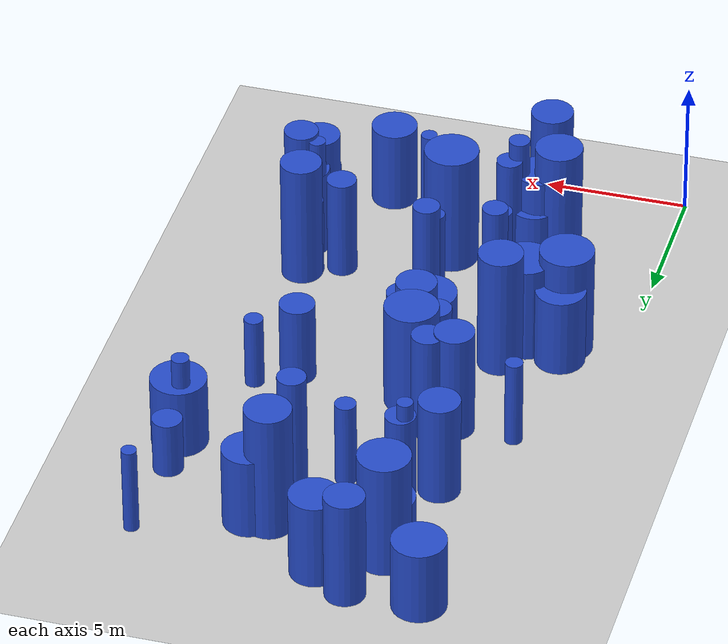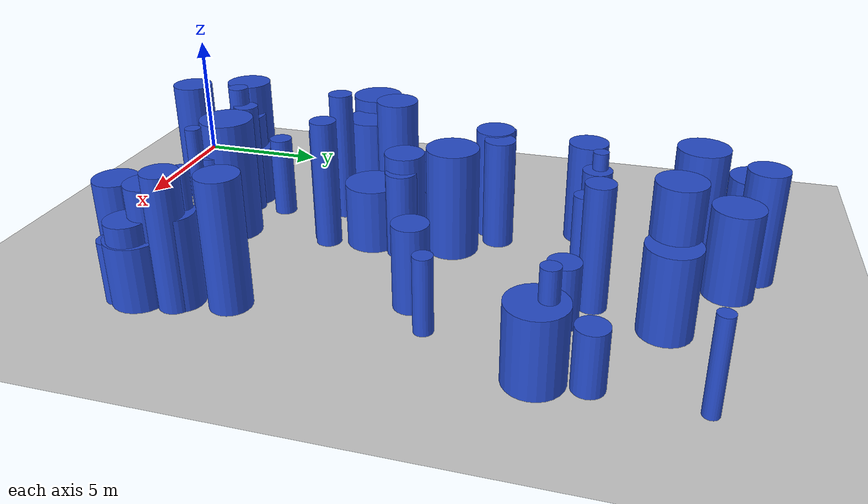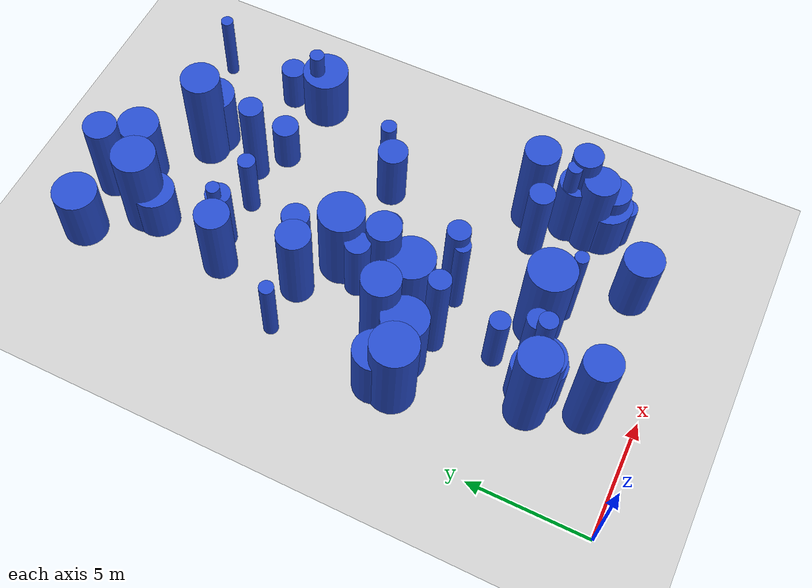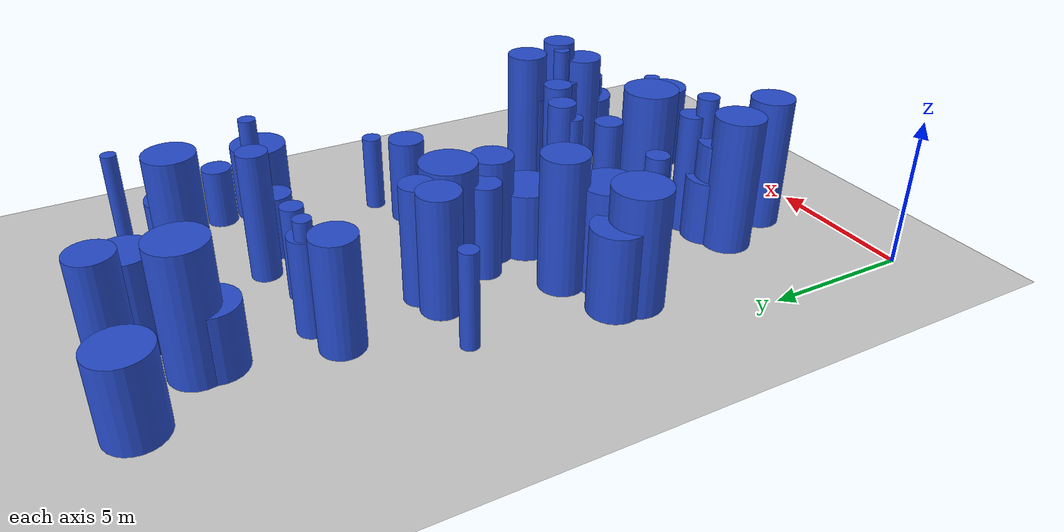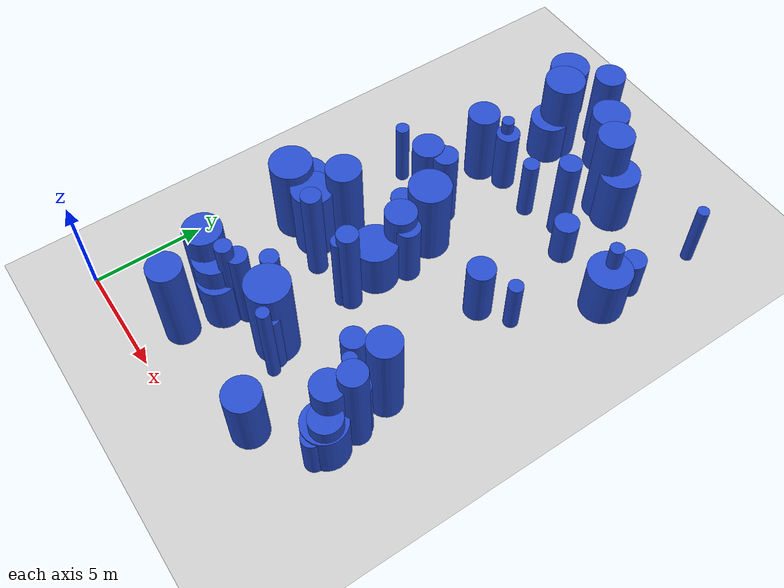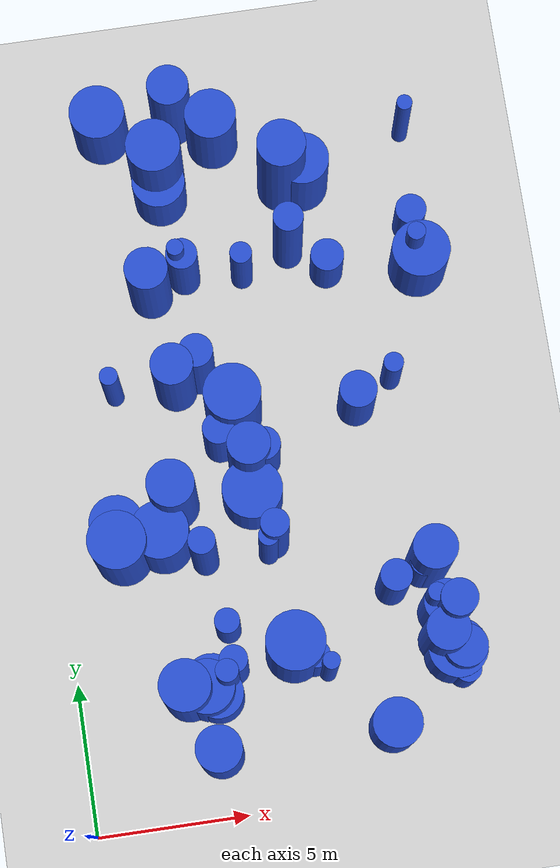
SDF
<sdf version="1.6">
 <world name="default">
  <model name="ground_plane">
   <static>1</static>
   <link name="link">
    <collision name="collision">
     <geometry><plane><normal>0 0 1</normal><size>100 100</size></plane></geometry>
     <surface><friction><ode><mu>100</mu><mu2>50</mu2></ode></friction></surface>
    </collision>
    <visual name="visual">
     <cast_shadows>0</cast_shadows>
     <geometry><plane><normal>0 0 1</normal><size>100 100</size></plane></geometry>
     <material>
      <script><uri>file://media/materials/scripts/gazebo.material</uri><name>Gazebo/Grey</name></script>
     </material>
    </visual>
   </link>
  </model>
  <model name="14">
   <static>0</static>
   <link name="link">
    <inertial>
     <mass>2</mass>
     <inertia><ixx>1.62326</ixx><ixy>0</ixy><ixz>0</ixz><iyy>1.62326</iyy><iyz>0</iyz><izz>0.944741</izz></inertia>
    </inertial>
    <collision name="collision">
     <geometry><cylinder><length>2.6278</length><radius>0.971978</radius></cylinder></geometry>
     <surface><contact><collide_without_contact>1</collide_without_contact></contact></surface>
    </collision>
    <visual name="visual">
     <geometry><cylinder><length>2.6278</length><radius>0.971978</radius></cylinder></geometry>
     <material>
      <script><uri>file://media/materials/scripts/gazebo.material</uri><name>Gazebo/Blue</name></script>
     </material>
    </visual>
    <gravity>0</gravity>
   </link>
   <pose>13.2788 17.3958 1.3139 0 -0 0</pose>
  </model>
  <model name="17">
   <static>0</static>
   <link name="link">
    <inertial>
     <mass>2</mass>
     <inertia><ixx>1.66425</ixx><ixy>0</ixy><ixz>0</ixz><iyy>1.66425</iyy><iyz>0</iyz><izz>0.867576</izz></inertia>
    </inertial>
    <collision name="collision">
     <geometry><cylinder><length>2.71712</length><radius>0.931438</radius></cylinder></geometry>
     <surface><contact><collide_without_contact>1</collide_without_contact></contact></surface>
    </collision>
    <visual name="visual">
     <geometry><cylinder><length>2.71712</length><radius>0.931438</radius></cylinder></geometry>
     <material>
      <script><uri>file://media/materials/scripts/gazebo.material</uri><name>Gazebo/Blue</name></script>
     </material>
    </visual>
    <gravity>0</gravity>
   </link>
   <pose>3.28204 23.6146 1.35856 0 -0 0</pose>
  </model>
  <model name="41">
   <static>0</static>
   <link name="link">
    <inertial>
     <mass>2</mass>
     <inertia><ixx>1.91434</ixx><ixy>0</ixy><ixz>0</ixz><iyy>1.91434</iyy><iyz>0</iyz><izz>0.273493</izz></inertia>
    </inertial>
    <collision name="collision">
     <geometry><cylinder><length>3.26581</length><radius>0.522966</radius></cylinder></geometry>
     <surface><contact><collide_without_contact>1</collide_without_contact></contact></surface>
    </collision>
    <visual name="visual">
     <geometry><cylinder><length>3.26581</length><radius>0.522966</radius></cylinder></geometry>
     <material>
      <script><uri>file://media/materials/scripts/gazebo.material</uri><name>Gazebo/Blue</name></script>
     </material>
    </visual>
    <gravity>0</gravity>
   </link>
   <pose>5.77971 12.2342 1.63291 0 -0 0</pose>
  </model>
  <model name="46">
   <static>0</static>
   <link name="link">
    <inertial>
     <mass>2</mass>
     <inertia><ixx>3.85343</ixx><ixy>0</ixy><ixz>0</ixz><iyy>3.85343</iyy><iyz>0</iyz><izz>0.911922</izz></inertia>
    </inertial>
    <collision name="collision">
     <geometry><cylinder><length>4.51496</length><radius>0.954946</radius></cylinder></geometry>
     <surface><contact><collide_without_contact>1</collide_without_contact></contact></surface>
    </collision>
    <visual name="visual">
     <geometry><cylinder><length>4.51496</length><radius>0.954946</radius></cylinder></geometry>
     <material>
      <script><uri>file://media/materials/scripts/gazebo.material</uri><name>Gazebo/Blue</name></script>
     </material>
    </visual>
    <gravity>0</gravity>
   </link>
   <pose>7.20316 4.98001 2.25748 0 -0 0</pose>
  </model>
  <model name="73">
   <static>0</static>
   <link name="link">
    <inertial>
     <mass>2</mass>
     <inertia>
      <ixx>0.913764</ixx>
      <ixy>0</ixy>
      <ixz>0</ixz>
      <iyy>0.913764</iyy>
      <iyz>0</iyz>
      <izz>0.189416</izz>
     </inertia>
    </inertial>
    <collision name="collision">
     <geometry><cylinder><length>2.21683</length><radius>0.435219</radius></cylinder></geometry>
     <surface><contact><collide_without_contact>1</collide_without_contact></contact></surface>
    </collision>
    <visual name="visual">
     <geometry><cylinder><length>2.21683</length><radius>0.435219</radius></cylinder></geometry>
     <material>
      <script><uri>file://media/materials/scripts/gazebo.material</uri><name>Gazebo/Blue</name></script>
     </material>
    </visual>
    <gravity>0</gravity>
   </link>
   <pose>12.5938 3.5096 1.10842 0 -0 0</pose>
  </model>
  <model name="74">
   <static>0</static>
   <link name="link">
    <inertial>
     <mass>2</mass>
     <inertia><ixx>3.01073</ixx><ixy>0</ixy><ixz>0</ixz><iyy>3.01073</iyy><iyz>0</iyz><izz>0.487504</izz></inertia>
    </inertial>
    <collision name="collision">
     <geometry><cylinder><length>4.07454</length><radius>0.698215</radius></cylinder></geometry>
     <surface><contact><collide_without_contact>1</collide_without_contact></contact></surface>
    </collision>
    <visual name="visual">
     <geometry><cylinder><length>4.07454</length><radius>0.698215</radius></cylinder></geometry>
     <material>
      <script><uri>file://media/materials/scripts/gazebo.material</uri><name>Gazebo/Blue</name></script>
     </material>
    </visual>
    <gravity>0</gravity>
   </link>
   <pose>4.59094 14.3631 2.03727 0 -0 0</pose>
  </model>
  <model name="94">
   <static>0</static>
   <link name="link">
    <inertial>
     <mass>2</mass>
     <inertia><ixx>3.36593</ixx><ixy>0</ixy><ixz>0</ixz><iyy>3.36593</iyy><iyz>0</iyz><izz>0.249697</izz></inertia>
    </inertial>
    <collision name="collision">
     <geometry><cylinder><length>4.40982</length><radius>0.499697</radius></cylinder></geometry>
     <surface><contact><collide_without_contact>1</collide_without_contact></contact></surface>
    </collision>
    <visual name="visual">
     <geometry><cylinder><length>4.40982</length><radius>0.499697</radius></cylinder></geometry>
     <material>
      <script><uri>file://media/materials/scripts/gazebo.material</uri><name>Gazebo/Blue</name></script>
     </material>
    </visual>
    <gravity>0</gravity>
   </link>
   <pose>8.99531 18.5687 2.20491 0 -0 0</pose>
  </model>
  <model name="102">
   <static>0</static>
   <link name="link">
    <inertial>
     <mass>2</mass>
     <inertia><ixx>3.88573</ixx><ixy>0</ixy><ixz>0</ixz><iyy>3.88573</iyy><iyz>0</iyz><izz>0.522101</izz></inertia>
    </inertial>
    <collision name="collision">
     <geometry><cylinder><length>4.66349</length><radius>0.722565</radius></cylinder></geometry>
     <surface><contact><collide_without_contact>1</collide_without_contact></contact></surface>
    </collision>
    <visual name="visual">
     <geometry><cylinder><length>4.66349</length><radius>0.722565</radius></cylinder></geometry>
     <material>
      <script><uri>file://media/materials/scripts/gazebo.material</uri><name>Gazebo/Blue</name></script>
     </material>
    </visual>
    <gravity>0</gravity>
   </link>
   <pose>11.9552 7.23054 2.33174 0 -0 0</pose>
  </model>
  <model name="113">
   <static>0</static>
   <link name="link">
    <inertial>
     <mass>2</mass>
     <inertia><ixx>2.51073</ixx><ixy>0</ixy><ixz>0</ixz><iyy>2.51073</iyy><iyz>0</iyz><izz>0.506951</izz></inertia>
    </inertial>
    <collision name="collision">
     <geometry><cylinder><length>3.68015</length><radius>0.712005</radius></cylinder></geometry>
     <surface><contact><collide_without_contact>1</collide_without_contact></contact></surface>
    </collision>
    <visual name="visual">
     <geometry><cylinder><length>3.68015</length><radius>0.712005</radius></cylinder></geometry>
     <material>
      <script><uri>file://media/materials/scripts/gazebo.material</uri><name>Gazebo/Blue</name></script>
     </material>
    </visual>
    <gravity>0</gravity>
   </link>
   <pose>6.67221 11.5352 1.84008 0 -0 0</pose>
  </model>
  <model name="125">
   <static>0</static>
   <link name="link">
    <inertial>
     <mass>2</mass>
     <inertia>
      <ixx>2.33344</ixx>
      <ixy>0</ixy>
      <ixz>0</ixz>
      <iyy>2.33344</iyy>
      <iyz>0</iyz>
      <izz>0.0951708</izz>
     </inertia>
    </inertial>
    <collision name="collision">
     <geometry><cylinder><length>3.70339</length><radius>0.308498</radius></cylinder></geometry>
     <surface><contact><collide_without_contact>1</collide_without_contact></contact></surface>
    </collision>
    <visual name="visual">
     <geometry><cylinder><length>3.70339</length><radius>0.308498</radius></cylinder></geometry>
     <material>
      <script><uri>file://media/materials/scripts/gazebo.material</uri><name>Gazebo/Blue</name></script>
     </material>
    </visual>
    <gravity>0</gravity>
   </link>
   <pose>13.0965 17.6955 1.8517 0 -0 0</pose>
  </model>
  <model name="138">
   <static>0</static>
   <link name="link">
    <inertial>
     <mass>2</mass>
     <inertia><ixx>2.48641</ixx><ixy>0</ixy><ixz>0</ixz><iyy>2.48641</iyy><iyz>0</iyz><izz>0.770894</izz></inertia>
    </inertial>
    <collision name="collision">
     <geometry><cylinder><length>3.55046</length><radius>0.878006</radius></cylinder></geometry>
     <surface><contact><collide_without_contact>1</collide_without_contact></contact></surface>
    </collision>
    <visual name="visual">
     <geometry><cylinder><length>3.55046</length><radius>0.878006</radius></cylinder></geometry>
     <material>
      <script><uri>file://media/materials/scripts/gazebo.material</uri><name>Gazebo/Blue</name></script>
     </material>
    </visual>
    <gravity>0</gravity>
   </link>
   <pose>4.26644 4.05533 1.77523 0 -0 0</pose>
  </model>
  <model name="143">
   <static>0</static>
   <link name="link">
    <inertial>
     <mass>2</mass>
     <inertia><ixx>2.08062</ixx><ixy>0</ixy><ixz>0</ixz><iyy>2.08062</iyy><iyz>0</iyz><izz>0.745942</izz></inertia>
    </inertial>
    <collision name="collision">
     <geometry><cylinder><length>3.20092</length><radius>0.863679</radius></cylinder></geometry>
     <surface><contact><collide_without_contact>1</collide_without_contact></contact></surface>
    </collision>
    <visual name="visual">
     <geometry><cylinder><length>3.20092</length><radius>0.863679</radius></cylinder></geometry>
     <material>
      <script><uri>file://media/materials/scripts/gazebo.material</uri><name>Gazebo/Blue</name></script>
     </material>
    </visual>
    <gravity>0</gravity>
   </link>
   <pose>7.01087 22.8325 1.60046 0 -0 0</pose>
  </model>
  <model name="164">
   <static>0</static>
   <link name="link">
    <inertial>
     <mass>2</mass>
     <inertia><ixx>3.22352</ixx><ixy>0</ixy><ixz>0</ixz><iyy>3.22352</iyy><iyz>0</iyz><izz>0.898502</izz></inertia>
    </inertial>
    <collision name="collision">
     <geometry><cylinder><length>4.0799</length><radius>0.947894</radius></cylinder></geometry>
     <surface><contact><collide_without_contact>1</collide_without_contact></contact></surface>
    </collision>
    <visual name="visual">
     <geometry><cylinder><length>4.0799</length><radius>0.947894</radius></cylinder></geometry>
     <material>
      <script><uri>file://media/materials/scripts/gazebo.material</uri><name>Gazebo/Blue</name></script>
     </material>
    </visual>
    <gravity>0</gravity>
   </link>
   <pose>2.09293 8.98197 2.03995 0 -0 0</pose>
  </model>
  <model name="193">
   <static>0</static>
   <link name="link">
    <inertial>
     <mass>2</mass>
     <inertia><ixx>3.88896</ixx><ixy>0</ixy><ixz>0</ixz><iyy>3.88896</iyy><iyz>0</iyz><izz>0.219308</izz></inertia>
    </inertial>
    <collision name="collision">
     <geometry><cylinder><length>4.76191</length><radius>0.468304</radius></cylinder></geometry>
     <surface><contact><collide_without_contact>1</collide_without_contact></contact></surface>
    </collision>
    <visual name="visual">
     <geometry><cylinder><length>4.76191</length><radius>0.468304</radius></cylinder></geometry>
     <material>
      <script><uri>file://media/materials/scripts/gazebo.material</uri><name>Gazebo/Blue</name></script>
     </material>
    </visual>
    <gravity>0</gravity>
   </link>
   <pose>7.09936 8.68752 2.38096 0 -0 0</pose>
  </model>
  <model name="198">
   <static>0</static>
   <link name="link">
    <inertial>
     <mass>2</mass>
     <inertia><ixx>1.94354</ixx><ixy>0</ixy><ixz>0</ixz><iyy>1.94354</iyy><iyz>0</iyz><izz>0.798761</izz></inertia>
    </inertial>
    <collision name="collision">
     <geometry><cylinder><length>3.04384</length><radius>0.893735</radius></cylinder></geometry>
     <surface><contact><collide_without_contact>1</collide_without_contact></contact></surface>
    </collision>
    <visual name="visual">
     <geometry><cylinder><length>3.04384</length><radius>0.893735</radius></cylinder></geometry>
     <material>
      <script><uri>file://media/materials/scripts/gazebo.material</uri><name>Gazebo/Blue</name></script>
     </material>
    </visual>
    <gravity>0</gravity>
   </link>
   <pose>9.81893 20.9071 1.52192 0 -0 0</pose>
  </model>
  <model name="203">
   <static>0</static>
   <link name="link">
    <inertial>
     <mass>2</mass>
     <inertia><ixx>3.87449</ixx><ixy>0</ixy><ixz>0</ixz><iyy>3.87449</iyy><iyz>0</iyz><izz>0.552332</izz></inertia>
    </inertial>
    <collision name="collision">
     <geometry><cylinder><length>4.6465</length><radius>0.743191</radius></cylinder></geometry>
     <surface><contact><collide_without_contact>1</collide_without_contact></contact></surface>
    </collision>
    <visual name="visual">
     <geometry><cylinder><length>4.6465</length><radius>0.743191</radius></cylinder></geometry>
     <material>
      <script><uri>file://media/materials/scripts/gazebo.material</uri><name>Gazebo/Blue</name></script>
     </material>
    </visual>
    <gravity>0</gravity>
   </link>
   <pose>4.3766 2.02422 2.32325 0 -0 0</pose>
  </model>
  <model name="206">
   <static>0</static>
   <link name="link">
    <inertial>
     <mass>2</mass>
     <inertia><ixx>1.90093</ixx><ixy>0</ixy><ixz>0</ixz><iyy>1.90093</iyy><iyz>0</iyz><izz>0.277404</izz></inertia>
    </inertial>
    <collision name="collision">
     <geometry><cylinder><length>3.25167</length><radius>0.526692</radius></cylinder></geometry>
     <surface><contact><collide_without_contact>1</collide_without_contact></contact></surface>
    </collision>
    <visual name="visual">
     <geometry><cylinder><length>3.25167</length><radius>0.526692</radius></cylinder></geometry>
     <material>
      <script><uri>file://media/materials/scripts/gazebo.material</uri><name>Gazebo/Blue</name></script>
     </material>
    </visual>
    <gravity>0</gravity>
   </link>
   <pose>5.40453 18.1767 1.62583 0 -0 0</pose>
  </model>
  <model name="223">
   <static>0</static>
   <link name="link">
    <inertial>
     <mass>2</mass>
     <inertia>
      <ixx>3.60529</ixx>
      <ixy>0</ixy>
      <ixz>0</ixz>
      <iyy>3.60529</iyy>
      <iyz>0</iyz>
      <izz>0.0882717</izz>
     </inertia>
    </inertial>
    <collision name="collision">
     <geometry><cylinder><length>4.62244</length><radius>0.297106</radius></cylinder></geometry>
     <surface><contact><collide_without_contact>1</collide_without_contact></contact></surface>
    </collision>
    <visual name="visual">
     <geometry><cylinder><length>4.62244</length><radius>0.297106</radius></cylinder></geometry>
     <material>
      <script><uri>file://media/materials/scripts/gazebo.material</uri><name>Gazebo/Blue</name></script>
     </material>
    </visual>
    <gravity>0</gravity>
   </link>
   <pose>11.7836 5.82699 2.31122 0 -0 0</pose>
  </model>
  <model name="238">
   <static>0</static>
   <link name="link">
    <inertial>
     <mass>2</mass>
     <inertia><ixx>1.76066</ixx><ixy>0</ixy><ixz>0</ixz><iyy>1.76066</iyy><iyz>0</iyz><izz>0.490048</izz></inertia>
    </inertial>
    <collision name="collision">
     <geometry><cylinder><length>3.01559</length><radius>0.700034</radius></cylinder></geometry>
     <surface><contact><collide_without_contact>1</collide_without_contact></contact></surface>
    </collision>
    <visual name="visual">
     <geometry><cylinder><length>3.01559</length><radius>0.700034</radius></cylinder></geometry>
     <material>
      <script><uri>file://media/materials/scripts/gazebo.material</uri><name>Gazebo/Blue</name></script>
     </material>
    </visual>
    <gravity>0</gravity>
   </link>
   <pose>12.5747 4.18833 1.5078 0 -0 0</pose>
  </model>
  <model name="241">
   <static>0</static>
   <link name="link">
    <inertial>
     <mass>2</mass>
     <inertia><ixx>1.81354</ixx><ixy>0</ixy><ixz>0</ixz><iyy>1.81354</iyy><iyz>0</iyz><izz>0.311613</izz></inertia>
    </inertial>
    <collision name="collision">
     <geometry><cylinder><length>3.15379</length><radius>0.558223</radius></cylinder></geometry>
     <surface><contact><collide_without_contact>1</collide_without_contact></contact></surface>
    </collision>
    <visual name="visual">
     <geometry><cylinder><length>3.15379</length><radius>0.558223</radius></cylinder></geometry>
     <material>
      <script><uri>file://media/materials/scripts/gazebo.material</uri><name>Gazebo/Blue</name></script>
     </material>
    </visual>
    <gravity>0</gravity>
   </link>
   <pose>7.15466 11.5564 1.5769 0 -0 0</pose>
  </model>
  <model name="244">
   <static>0</static>
   <link name="link">
    <inertial>
     <mass>2</mass>
     <inertia><ixx>1.823</ixx><ixy>0</ixy><ixz>0</ixz><iyy>1.823</iyy><iyz>0</iyz><izz>0.769265</izz></inertia>
    </inertial>
    <collision name="collision">
     <geometry><cylinder><length>2.93772</length><radius>0.877078</radius></cylinder></geometry>
     <surface><contact><collide_without_contact>1</collide_without_contact></contact></surface>
    </collision>
    <visual name="visual">
     <geometry><cylinder><length>2.93772</length><radius>0.877078</radius></cylinder></geometry>
     <material>
      <script><uri>file://media/materials/scripts/gazebo.material</uri><name>Gazebo/Blue</name></script>
     </material>
    </visual>
    <gravity>0</gravity>
   </link>
   <pose>2.1049 9.73701 1.46886 0 -0 0</pose>
  </model>
  <model name="247">
   <static>0</static>
   <link name="link">
    <inertial>
     <mass>2</mass>
     <inertia><ixx>1.89873</ixx><ixy>0</ixy><ixz>0</ixz><iyy>1.89873</iyy><iyz>0</iyz><izz>0.649582</izz></inertia>
    </inertial>
    <collision name="collision">
     <geometry><cylinder><length>3.07305</length><radius>0.805966</radius></cylinder></geometry>
     <surface><contact><collide_without_contact>1</collide_without_contact></contact></surface>
    </collision>
    <visual name="visual">
     <geometry><cylinder><length>3.07305</length><radius>0.805966</radius></cylinder></geometry>
     <material>
      <script><uri>file://media/materials/scripts/gazebo.material</uri><name>Gazebo/Blue</name></script>
     </material>
    </visual>
    <gravity>0</gravity>
   </link>
   <pose>10.0396 2.10356 1.53653 0 -0 0</pose>
  </model>
  <model name="251">
   <static>0</static>
   <link name="link">
    <inertial>
     <mass>2</mass>
     <inertia><ixx>3.14282</ixx><ixy>0</ixy><ixz>0</ixz><iyy>3.14282</iyy><iyz>0</iyz><izz>0.203792</izz></inertia>
    </inertial>
    <collision name="collision">
     <geometry><cylinder><length>4.27148</length><radius>0.451433</radius></cylinder></geometry>
     <surface><contact><collide_without_contact>1</collide_without_contact></contact></surface>
    </collision>
    <visual name="visual">
     <geometry><cylinder><length>4.27148</length><radius>0.451433</radius></cylinder></geometry>
     <material>
      <script><uri>file://media/materials/scripts/gazebo.material</uri><name>Gazebo/Blue</name></script>
     </material>
    </visual>
    <gravity>0</gravity>
   </link>
   <pose>5.20774 4.71311 2.13574 0 -0 0</pose>
  </model>
  <model name="264">
   <static>0</static>
   <link name="link">
    <inertial>
     <mass>2</mass>
     <inertia><ixx>4.07382</ixx><ixy>0</ixy><ixz>0</ixz><iyy>4.07382</iyy><iyz>0</iyz><izz>0.136545</izz></inertia>
    </inertial>
    <collision name="collision">
     <geometry><cylinder><length>4.90238</length><radius>0.36952</radius></cylinder></geometry>
     <surface><contact><collide_without_contact>1</collide_without_contact></contact></surface>
    </collision>
    <visual name="visual">
     <geometry><cylinder><length>4.90238</length><radius>0.36952</radius></cylinder></geometry>
     <material>
      <script><uri>file://media/materials/scripts/gazebo.material</uri><name>Gazebo/Blue</name></script>
     </material>
    </visual>
    <gravity>0</gravity>
   </link>
   <pose>4.9609 4.33589 2.45119 0 -0 0</pose>
  </model>
  <model name="272">
   <static>0</static>
   <link name="link">
    <inertial>
     <mass>2</mass>
     <inertia><ixx>1.88589</ixx><ixy>0</ixy><ixz>0</ixz><iyy>1.88589</iyy><iyz>0</iyz><izz>0.190314</izz></inertia>
    </inertial>
    <collision name="collision">
     <geometry><cylinder><length>3.27786</length><radius>0.43625</radius></cylinder></geometry>
     <surface><contact><collide_without_contact>1</collide_without_contact></contact></surface>
    </collision>
    <visual name="visual">
     <geometry><cylinder><length>3.27786</length><radius>0.43625</radius></cylinder></geometry>
     <material>
      <script><uri>file://media/materials/scripts/gazebo.material</uri><name>Gazebo/Blue</name></script>
     </material>
    </visual>
    <gravity>0</gravity>
   </link>
   <pose>7.82483 4.58148 1.63893 0 -0 0</pose>
  </model>
  <model name="281">
   <static>0</static>
   <link name="link">
    <inertial>
     <mass>2</mass>
     <inertia><ixx>2.85258</ixx><ixy>0</ixy><ixz>0</ixz><iyy>2.85258</iyy><iyz>0</iyz><izz>0.312126</izz></inertia>
    </inertial>
    <collision name="collision">
     <geometry><cylinder><length>4.02233</length><radius>0.558682</radius></cylinder></geometry>
     <surface><contact><collide_without_contact>1</collide_without_contact></contact></surface>
    </collision>
    <visual name="visual">
     <geometry><cylinder><length>4.02233</length><radius>0.558682</radius></cylinder></geometry>
     <material>
      <script><uri>file://media/materials/scripts/gazebo.material</uri><name>Gazebo/Blue</name></script>
     </material>
    </visual>
    <gravity>0</gravity>
   </link>
   <pose>5.42001 14.7024 2.01116 0 -0 0</pose>
  </model>
  <model name="283">
   <static>0</static>
   <link name="link">
    <inertial>
     <mass>2</mass>
     <inertia><ixx>3.08315</ixx><ixy>0</ixy><ixz>0</ixz><iyy>3.08315</iyy><iyz>0</iyz><izz>0.109897</izz></inertia>
    </inertial>
    <collision name="collision">
     <geometry><cylinder><length>4.26253</length><radius>0.331507</radius></cylinder></geometry>
     <surface><contact><collide_without_contact>1</collide_without_contact></contact></surface>
    </collision>
    <visual name="visual">
     <geometry><cylinder><length>4.26253</length><radius>0.331507</radius></cylinder></geometry>
     <material>
      <script><uri>file://media/materials/scripts/gazebo.material</uri><name>Gazebo/Blue</name></script>
     </material>
    </visual>
    <gravity>0</gravity>
   </link>
   <pose>6.85773 8.39429 2.13127 0 -0 0</pose>
  </model>
  <model name="285">
   <static>0</static>
   <link name="link">
    <inertial>
     <mass>2</mass>
     <inertia>
      <ixx>0.860321</ixx>
      <ixy>0</ixy>
      <ixz>0</ixz>
      <iyy>0.860321</iyy>
      <iyz>0</iyz>
      <izz>0.270406</izz>
     </inertia>
    </inertial>
    <collision name="collision">
     <geometry><cylinder><length>2.08583</length><radius>0.520006</radius></cylinder></geometry>
     <surface><contact><collide_without_contact>1</collide_without_contact></contact></surface>
    </collision>
    <visual name="visual">
     <geometry><cylinder><length>2.08583</length><radius>0.520006</radius></cylinder></geometry>
     <material>
      <script><uri>file://media/materials/scripts/gazebo.material</uri><name>Gazebo/Blue</name></script>
     </material>
    </visual>
    <gravity>0</gravity>
   </link>
   <pose>13.2103 18.9376 1.04292 0 -0 0</pose>
  </model>
  <model name="291">
   <static>0</static>
   <link name="link">
    <inertial>
     <mass>2</mass>
     <inertia><ixx>1.1926</ixx><ixy>0</ixy><ixz>0</ixz><iyy>1.1926</iyy><iyz>0</iyz><izz>0.675692</izz></inertia>
    </inertial>
    <collision name="collision">
     <geometry><cylinder><length>2.26462</length><radius>0.822005</radius></cylinder></geometry>
     <surface><contact><collide_without_contact>1</collide_without_contact></contact></surface>
    </collision>
    <visual name="visual">
     <geometry><cylinder><length>2.26462</length><radius>0.822005</radius></cylinder></geometry>
     <material>
      <script><uri>file://media/materials/scripts/gazebo.material</uri><name>Gazebo/Blue</name></script>
     </material>
    </visual>
    <gravity>0</gravity>
   </link>
   <pose>4.40841 4.38067 1.13231 0 -0 0</pose>
  </model>
  <model name="294">
   <static>0</static>
   <link name="link">
    <inertial>
     <mass>2</mass>
     <inertia><ixx>3.0039</ixx><ixy>0</ixy><ixz>0</ixz><iyy>3.0039</iyy><iyz>0</iyz><izz>0.482547</izz></inertia>
    </inertial>
    <collision name="collision">
     <geometry><cylinder><length>4.07134</length><radius>0.694656</radius></cylinder></geometry>
     <surface><contact><collide_without_contact>1</collide_without_contact></contact></surface>
    </collision>
    <visual name="visual">
     <geometry><cylinder><length>4.07134</length><radius>0.694656</radius></cylinder></geometry>
     <material>
      <script><uri>file://media/materials/scripts/gazebo.material</uri><name>Gazebo/Blue</name></script>
     </material>
    </visual>
    <gravity>0</gravity>
   </link>
   <pose>5.7499 23.6963 2.03567 0 -0 0</pose>
  </model>
  <model name="302">
   <static>0</static>
   <link name="link">
    <inertial>
     <mass>2</mass>
     <inertia><ixx>3.9536</ixx><ixy>0</ixy><ixz>0</ixz><iyy>3.9536</iyy><iyz>0</iyz><izz>0.358338</izz></inertia>
    </inertial>
    <collision name="collision">
     <geometry><cylinder><length>4.75885</length><radius>0.598614</radius></cylinder></geometry>
     <surface><contact><collide_without_contact>1</collide_without_contact></contact></surface>
    </collision>
    <visual name="visual">
     <geometry><cylinder><length>4.75885</length><radius>0.598614</radius></cylinder></geometry>
     <material>
      <script><uri>file://media/materials/scripts/gazebo.material</uri><name>Gazebo/Blue</name></script>
     </material>
    </visual>
    <gravity>0</gravity>
   </link>
   <pose>12.4286 5.54614 2.37942 0 -0 0</pose>
  </model>
  <model name="307">
   <static>0</static>
   <link name="link">
    <inertial>
     <mass>2</mass>
     <inertia><ixx>2.62821</ixx><ixy>0</ixy><ixz>0</ixz><iyy>2.62821</iyy><iyz>0</iyz><izz>0.514558</izz></inertia>
    </inertial>
    <collision name="collision">
     <geometry><cylinder><length>3.77168</length><radius>0.717327</radius></cylinder></geometry>
     <surface><contact><collide_without_contact>1</collide_without_contact></contact></surface>
    </collision>
    <visual name="visual">
     <geometry><cylinder><length>3.77168</length><radius>0.717327</radius></cylinder></geometry>
     <material>
      <script><uri>file://media/materials/scripts/gazebo.material</uri><name>Gazebo/Blue</name></script>
     </material>
    </visual>
    <gravity>0</gravity>
   </link>
   <pose>4.19957 17.7072 1.88584 0 -0 0</pose>
  </model>
  <model name="314">
   <static>0</static>
   <link name="link">
    <inertial>
     <mass>2</mass>
     <inertia>
      <ixx>1.81994</ixx>
      <ixy>0</ixy>
      <ixz>0</ixz>
      <iyy>1.81994</iyy>
      <iyz>0</iyz>
      <izz>0.0941204</izz>
     </inertia>
    </inertial>
    <collision name="collision">
     <geometry><cylinder><length>3.26149</length><radius>0.306791</radius></cylinder></geometry>
     <surface><contact><collide_without_contact>1</collide_without_contact></contact></surface>
    </collision>
    <visual name="visual">
     <geometry><cylinder><length>3.26149</length><radius>0.306791</radius></cylinder></geometry>
     <material>
      <script><uri>file://media/materials/scripts/gazebo.material</uri><name>Gazebo/Blue</name></script>
     </material>
    </visual>
    <gravity>0</gravity>
   </link>
   <pose>2.50861 14.4514 1.63074 0 -0 0</pose>
  </model>
  <model name="315">
   <static>0</static>
   <link name="link">
    <inertial>
     <mass>2</mass>
     <inertia><ixx>3.04826</ixx><ixy>0</ixy><ixz>0</ixz><iyy>3.04826</iyy><iyz>0</iyz><izz>0.502835</izz></inertia>
    </inertial>
    <collision name="collision">
     <geometry><cylinder><length>4.09647</length><radius>0.709108</radius></cylinder></geometry>
     <surface><contact><collide_without_contact>1</collide_without_contact></contact></surface>
    </collision>
    <visual name="visual">
     <geometry><cylinder><length>4.09647</length><radius>0.709108</radius></cylinder></geometry>
     <material>
      <script><uri>file://media/materials/scripts/gazebo.material</uri><name>Gazebo/Blue</name></script>
     </material>
    </visual>
    <gravity>0</gravity>
   </link>
   <pose>12.0036 4.70819 2.04823 0 -0 0</pose>
  </model>
  <model name="316">
   <static>0</static>
   <link name="link">
    <inertial>
     <mass>2</mass>
     <inertia><ixx>1.39533</ixx><ixy>0</ixy><ixz>0</ixz><iyy>1.39533</iyy><iyz>0</iyz><izz>0.68783</izz></inertia>
    </inertial>
    <collision name="collision">
     <geometry><cylinder><length>2.51167</length><radius>0.829355</radius></cylinder></geometry>
     <surface><contact><collide_without_contact>1</collide_without_contact></contact></surface>
    </collision>
    <visual name="visual">
     <geometry><cylinder><length>2.51167</length><radius>0.829355</radius></cylinder></geometry>
     <material>
      <script><uri>file://media/materials/scripts/gazebo.material</uri><name>Gazebo/Blue</name></script>
     </material>
    </visual>
    <gravity>0</gravity>
   </link>
   <pose>4.56247 3.89712 1.25583 0 -0 0</pose>
  </model>
  <model name="323">
   <static>0</static>
   <link name="link">
    <inertial>
     <mass>2</mass>
     <inertia><ixx>3.8614</ixx><ixy>0</ixy><ixz>0</ixz><iyy>3.8614</iyy><iyz>0</iyz><izz>0.605761</izz></inertia>
    </inertial>
    <collision name="collision">
     <geometry><cylinder><length>4.62073</length><radius>0.778307</radius></cylinder></geometry>
     <surface><contact><collide_without_contact>1</collide_without_contact></contact></surface>
    </collision>
    <visual name="visual">
     <geometry><cylinder><length>4.62073</length><radius>0.778307</radius></cylinder></geometry>
     <material>
      <script><uri>file://media/materials/scripts/gazebo.material</uri><name>Gazebo/Blue</name></script>
     </material>
    </visual>
    <gravity>0</gravity>
   </link>
   <pose>4.02999 10.4346 2.31036 0 -0 0</pose>
  </model>
  <model name="328">
   <static>0</static>
   <link name="link">
    <inertial>
     <mass>2</mass>
     <inertia><ixx>4.19958</ixx><ixy>0</ixy><ixz>0</ixz><iyy>4.19958</iyy><iyz>0</iyz><izz>0.648489</izz></inertia>
    </inertial>
    <collision name="collision">
     <geometry><cylinder><length>4.82203</length><radius>0.805288</radius></cylinder></geometry>
     <surface><contact><collide_without_contact>1</collide_without_contact></contact></surface>
    </collision>
    <visual name="visual">
     <geometry><cylinder><length>4.82203</length><radius>0.805288</radius></cylinder></geometry>
     <material>
      <script><uri>file://media/materials/scripts/gazebo.material</uri><name>Gazebo/Blue</name></script>
     </material>
    </visual>
    <gravity>0</gravity>
   </link>
   <pose>9.11443 20.9223 2.41102 0 -0 0</pose>
  </model>
  <model name="341">
   <static>0</static>
   <link name="link">
    <inertial>
     <mass>2</mass>
     <inertia><ixx>4.00142</ixx><ixy>0</ixy><ixz>0</ixz><iyy>4.00142</iyy><iyz>0</iyz><izz>0.69047</izz></inertia>
    </inertial>
    <collision name="collision">
     <geometry><cylinder><length>4.68371</length><radius>0.830945</radius></cylinder></geometry>
     <surface><contact><collide_without_contact>1</collide_without_contact></contact></surface>
    </collision>
    <visual name="visual">
     <geometry><cylinder><length>4.68371</length><radius>0.830945</radius></cylinder></geometry>
     <material>
      <script><uri>file://media/materials/scripts/gazebo.material</uri><name>Gazebo/Blue</name></script>
     </material>
    </visual>
    <gravity>0</gravity>
   </link>
   <pose>3.61126 4.09128 2.34185 0 -0 0</pose>
  </model>
  <model name="344">
   <static>0</static>
   <link name="link">
    <inertial>
     <mass>2</mass>
     <inertia><ixx>3.03524</ixx><ixy>0</ixy><ixz>0</ixz><iyy>3.03524</iyy><iyz>0</iyz><izz>0.886943</izz></inertia>
    </inertial>
    <collision name="collision">
     <geometry><cylinder><length>3.94343</length><radius>0.941776</radius></cylinder></geometry>
     <surface><contact><collide_without_contact>1</collide_without_contact></contact></surface>
    </collision>
    <visual name="visual">
     <geometry><cylinder><length>3.94343</length><radius>0.941776</radius></cylinder></geometry>
     <material>
      <script><uri>file://media/materials/scripts/gazebo.material</uri><name>Gazebo/Blue</name></script>
     </material>
    </visual>
    <gravity>0</gravity>
   </link>
   <pose>6.384 13.2151 1.97171 0 -0 0</pose>
  </model>
  <model name="386">
   <static>0</static>
   <link name="link">
    <inertial>
     <mass>2</mass>
     <inertia>
      <ixx>1.77582</ixx>
      <ixy>0</ixy>
      <ixz>0</ixz>
      <iyy>1.77582</iyy>
      <iyz>0</iyz>
      <izz>0.0691211</izz>
     </inertia>
    </inertial>
    <collision name="collision">
     <geometry><cylinder><length>3.23226</length><radius>0.262909</radius></cylinder></geometry>
     <surface><contact><collide_without_contact>1</collide_without_contact></contact></surface>
    </collision>
    <visual name="visual">
     <geometry><cylinder><length>3.23226</length><radius>0.262909</radius></cylinder></geometry>
     <material>
      <script><uri>file://media/materials/scripts/gazebo.material</uri><name>Gazebo/Blue</name></script>
     </material>
    </visual>
    <gravity>0</gravity>
   </link>
   <pose>13.4561 22.2636 1.61613 0 -0 0</pose>
  </model>
  <model name="399">
   <static>0</static>
   <link name="link">
    <inertial>
     <mass>2</mass>
     <inertia><ixx>2.62258</ixx><ixy>0</ixy><ixz>0</ixz><iyy>2.62258</iyy><iyz>0</iyz><izz>0.886007</izz></inertia>
    </inertial>
    <collision name="collision">
     <geometry><cylinder><length>3.61628</length><radius>0.941279</radius></cylinder></geometry>
     <surface><contact><collide_without_contact>1</collide_without_contact></contact></surface>
    </collision>
    <visual name="visual">
     <geometry><cylinder><length>3.61628</length><radius>0.941279</radius></cylinder></geometry>
     <material>
      <script><uri>file://media/materials/scripts/gazebo.material</uri><name>Gazebo/Blue</name></script>
     </material>
    </visual>
    <gravity>0</gravity>
   </link>
   <pose>3.46863 9.17788 1.80814 0 -0 0</pose>
  </model>
  <model name="411">
   <static>0</static>
   <link name="link">
    <inertial>
     <mass>2</mass>
     <inertia><ixx>3.50408</ixx><ixy>0</ixy><ixz>0</ixz><iyy>3.50408</iyy><iyz>0</iyz><izz>0.817516</izz></inertia>
    </inertial>
    <collision name="collision">
     <geometry><cylinder><length>4.30952</length><radius>0.904166</radius></cylinder></geometry>
     <surface><contact><collide_without_contact>1</collide_without_contact></contact></surface>
    </collision>
    <visual name="visual">
     <geometry><cylinder><length>4.30952</length><radius>0.904166</radius></cylinder></geometry>
     <material>
      <script><uri>file://media/materials/scripts/gazebo.material</uri><name>Gazebo/Blue</name></script>
     </material>
    </visual>
    <gravity>0</gravity>
   </link>
   <pose>4.99349 21.6322 2.15476 0 -0 0</pose>
  </model>
  <model name="414">
   <static>0</static>
   <link name="link">
    <inertial>
     <mass>2</mass>
     <inertia><ixx>2.49451</ixx><ixy>0</ixy><ixz>0</ixz><iyy>2.49451</iyy><iyz>0</iyz><izz>0.271626</izz></inertia>
    </inertial>
    <collision name="collision">
     <geometry><cylinder><length>3.76194</length><radius>0.521177</radius></cylinder></geometry>
     <surface><contact><collide_without_contact>1</collide_without_contact></contact></surface>
    </collision>
    <visual name="visual">
     <geometry><cylinder><length>3.76194</length><radius>0.521177</radius></cylinder></geometry>
     <material>
      <script><uri>file://media/materials/scripts/gazebo.material</uri><name>Gazebo/Blue</name></script>
     </material>
    </visual>
    <gravity>0</gravity>
   </link>
   <pose>10.6782 6.63694 1.88097 0 -0 0</pose>
  </model>
  <model name="425">
   <static>0</static>
   <link name="link">
    <inertial>
     <mass>2</mass>
     <inertia><ixx>1.59552</ixx><ixy>0</ixy><ixz>0</ixz><iyy>1.59552</iyy><iyz>0</iyz><izz>0.262353</izz></inertia>
    </inertial>
    <collision name="collision">
     <geometry><cylinder><length>2.96413</length><radius>0.512204</radius></cylinder></geometry>
     <surface><contact><collide_without_contact>1</collide_without_contact></contact></surface>
    </collision>
    <visual name="visual">
     <geometry><cylinder><length>2.96413</length><radius>0.512204</radius></cylinder></geometry>
     <material>
      <script><uri>file://media/materials/scripts/gazebo.material</uri><name>Gazebo/Blue</name></script>
     </material>
    </visual>
    <gravity>0</gravity>
   </link>
   <pose>11.747 7.0642 1.48206 0 -0 0</pose>
  </model>
  <model name="431">
   <static>0</static>
   <link name="link">
    <inertial>
     <mass>2</mass>
     <inertia><ixx>1.69971</ixx><ixy>0</ixy><ixz>0</ixz><iyy>1.69971</iyy><iyz>0</iyz><izz>0.38489</izz></inertia>
    </inertial>
    <collision name="collision">
     <geometry><cylinder><length>3.00726</length><radius>0.620395</radius></cylinder></geometry>
     <surface><contact><collide_without_contact>1</collide_without_contact></contact></surface>
    </collision>
    <visual name="visual">
     <geometry><cylinder><length>3.00726</length><radius>0.620395</radius></cylinder></geometry>
     <material>
      <script><uri>file://media/materials/scripts/gazebo.material</uri><name>Gazebo/Blue</name></script>
     </material>
    </visual>
    <gravity>0</gravity>
   </link>
   <pose>10.4652 12.9077 1.50363 0 -0 0</pose>
  </model>
  <model name="432">
   <static>0</static>
   <link name="link">
    <inertial>
     <mass>2</mass>
     <inertia>
      <ixx>3.32657</ixx>
      <ixy>0</ixy>
      <ixz>0</ixz>
      <iyy>3.32657</iyy>
      <iyz>0</iyz>
      <izz>0.0791074</izz>
     </inertia>
    </inertial>
    <collision name="collision">
     <geometry><cylinder><length>4.44095</length><radius>0.28126</radius></cylinder></geometry>
     <surface><contact><collide_without_contact>1</collide_without_contact></contact></surface>
    </collision>
    <visual name="visual">
     <geometry><cylinder><length>4.44095</length><radius>0.28126</radius></cylinder></geometry>
     <material>
      <script><uri>file://media/materials/scripts/gazebo.material</uri><name>Gazebo/Blue</name></script>
     </material>
    </visual>
    <gravity>0</gravity>
   </link>
   <pose>8.21128 4.21067 2.22048 0 -0 0</pose>
  </model>
  <model name="433">
   <static>0</static>
   <link name="link">
    <inertial>
     <mass>2</mass>
     <inertia><ixx>1.74683</ixx><ixy>0</ixy><ixz>0</ixz><iyy>1.74683</iyy><iyz>0</iyz><izz>0.135875</izz></inertia>
    </inertial>
    <collision name="collision">
     <geometry><cylinder><length>3.17386</length><radius>0.368612</radius></cylinder></geometry>
     <surface><contact><collide_without_contact>1</collide_without_contact></contact></surface>
    </collision>
    <visual name="visual">
     <geometry><cylinder><length>3.17386</length><radius>0.368612</radius></cylinder></geometry>
     <material>
      <script><uri>file://media/materials/scripts/gazebo.material</uri><name>Gazebo/Blue</name></script>
     </material>
    </visual>
    <gravity>0</gravity>
   </link>
   <pose>7.3397 17.9583 1.58693 0 -0 0</pose>
  </model>
  <model name="434">
   <static>0</static>
   <link name="link">
    <inertial>
     <mass>2</mass>
     <inertia><ixx>1.65527</ixx><ixy>0</ixy><ixz>0</ixz><iyy>1.65527</iyy><iyz>0</iyz><izz>0.171705</izz></inertia>
    </inertial>
    <collision name="collision">
     <geometry><cylinder><length>3.06863</length><radius>0.414372</radius></cylinder></geometry>
     <surface><contact><collide_without_contact>1</collide_without_contact></contact></surface>
    </collision>
    <visual name="visual">
     <geometry><cylinder><length>3.06863</length><radius>0.414372</radius></cylinder></geometry>
     <material>
      <script><uri>file://media/materials/scripts/gazebo.material</uri><name>Gazebo/Blue</name></script>
     </material>
    </visual>
    <gravity>0</gravity>
   </link>
   <pose>5.1752 6.0612 1.53432 0 -0 0</pose>
  </model>
  <model name="436">
   <static>0</static>
   <link name="link">
    <inertial>
     <mass>2</mass>
     <inertia><ixx>1.26177</ixx><ixy>0</ixy><ixz>0</ixz><iyy>1.26177</iyy><iyz>0</iyz><izz>0.111379</izz></inertia>
    </inertial>
    <collision name="collision">
     <geometry><cylinder><length>2.69007</length><radius>0.333734</radius></cylinder></geometry>
     <surface><contact><collide_without_contact>1</collide_without_contact></contact></surface>
    </collision>
    <visual name="visual">
     <geometry><cylinder><length>2.69007</length><radius>0.333734</radius></cylinder></geometry>
     <material>
      <script><uri>file://media/materials/scripts/gazebo.material</uri><name>Gazebo/Blue</name></script>
     </material>
    </visual>
    <gravity>0</gravity>
   </link>
   <pose>11.7658 13.6951 1.34504 0 -0 0</pose>
  </model>
  <model name="453">
   <static>0</static>
   <link name="link">
    <inertial>
     <mass>2</mass>
     <inertia>
      <ixx>0.971984</ixx>
      <ixy>0</ixy>
      <ixz>0</ixz>
      <iyy>0.971984</iyy>
      <iyz>0</iyz>
      <izz>0.312791</izz>
     </inertia>
    </inertial>
    <collision name="collision">
     <geometry><cylinder><length>2.21213</length><radius>0.559277</radius></cylinder></geometry>
     <surface><contact><collide_without_contact>1</collide_without_contact></contact></surface>
    </collision>
    <visual name="visual">
     <geometry><cylinder><length>2.21213</length><radius>0.559277</radius></cylinder></geometry>
     <material>
      <script><uri>file://media/materials/scripts/gazebo.material</uri><name>Gazebo/Blue</name></script>
     </material>
    </visual>
    <gravity>0</gravity>
   </link>
   <pose>10.1978 17.7456 1.10607 0 -0 0</pose>
  </model>
  <model name="465">
   <static>0</static>
   <link name="link">
    <inertial>
     <mass>2</mass>
     <inertia><ixx>4.18173</ixx><ixy>0</ixy><ixz>0</ixz><iyy>4.18173</iyy><iyz>0</iyz><izz>0.19645</izz></inertia>
    </inertial>
    <collision name="collision">
     <geometry><cylinder><length>4.94985</length><radius>0.443227</radius></cylinder></geometry>
     <surface><contact><collide_without_contact>1</collide_without_contact></contact></surface>
    </collision>
    <visual name="visual">
     <geometry><cylinder><length>4.94985</length><radius>0.443227</radius></cylinder></geometry>
     <material>
      <script><uri>file://media/materials/scripts/gazebo.material</uri><name>Gazebo/Blue</name></script>
     </material>
    </visual>
    <gravity>0</gravity>
   </link>
   <pose>4.75281 8.43859 2.47493 0 -0 0</pose>
  </model>
  <model name="473">
   <static>0</static>
   <link name="link">
    <inertial>
     <mass>2</mass>
     <inertia><ixx>2.05441</ixx><ixy>0</ixy><ixz>0</ixz><iyy>2.05441</iyy><iyz>0</iyz><izz>0.544178</izz></inertia>
    </inertial>
    <collision name="collision">
     <geometry><cylinder><length>3.27015</length><radius>0.737684</radius></cylinder></geometry>
     <surface><contact><collide_without_contact>1</collide_without_contact></contact></surface>
    </collision>
    <visual name="visual">
     <geometry><cylinder><length>3.27015</length><radius>0.737684</radius></cylinder></geometry>
     <material>
      <script><uri>file://media/materials/scripts/gazebo.material</uri><name>Gazebo/Blue</name></script>
     </material>
    </visual>
    <gravity>0</gravity>
   </link>
   <pose>12.1589 5.62815 1.63508 0 -0 0</pose>
  </model>
  <model name="475">
   <static>0</static>
   <link name="link">
    <inertial>
     <mass>2</mass>
     <inertia><ixx>1.36002</ixx><ixy>0</ixy><ixz>0</ixz><iyy>1.36002</iyy><iyz>0</iyz><izz>0.935391</izz></inertia>
    </inertial>
    <collision name="collision">
     <geometry><cylinder><length>2.31386</length><radius>0.967156</radius></cylinder></geometry>
     <surface><contact><collide_without_contact>1</collide_without_contact></contact></surface>
    </collision>
    <visual name="visual">
     <geometry><cylinder><length>2.31386</length><radius>0.967156</radius></cylinder></geometry>
     <material>
      <script><uri>file://media/materials/scripts/gazebo.material</uri><name>Gazebo/Blue</name></script>
     </material>
    </visual>
    <gravity>0</gravity>
   </link>
   <pose>12.377 4.21807 1.15693 0 -0 0</pose>
  </model>
  <model name="483">
   <static>0</static>
   <link name="link">
    <inertial>
     <mass>2</mass>
     <inertia><ixx>1.20051</ixx><ixy>0</ixy><ixz>0</ixz><iyy>1.20051</iyy><iyz>0</iyz><izz>0.795185</izz></inertia>
    </inertial>
    <collision name="collision">
     <geometry><cylinder><length>2.19488</length><radius>0.891731</radius></cylinder></geometry>
     <surface><contact><collide_without_contact>1</collide_without_contact></contact></surface>
    </collision>
    <visual name="visual">
     <geometry><cylinder><length>2.19488</length><radius>0.891731</radius></cylinder></geometry>
     <material>
      <script><uri>file://media/materials/scripts/gazebo.material</uri><name>Gazebo/Blue</name></script>
     </material>
    </visual>
    <gravity>0</gravity>
   </link>
   <pose>4.98541 21.0816 1.09744 0 -0 0</pose>
  </model>
  <model name="485">
   <static>0</static>
   <link name="link">
    <inertial>
     <mass>2</mass>
     <inertia>
      <ixx>2.54436</ixx>
      <ixy>0</ixy>
      <ixz>0</ixz>
      <iyy>2.54436</iyy>
      <iyz>0</iyz>
      <izz>0.0783915</izz>
     </inertia>
    </inertial>
    <collision name="collision">
     <geometry><cylinder><length>3.87698</length><radius>0.279985</radius></cylinder></geometry>
     <surface><contact><collide_without_contact>1</collide_without_contact></contact></surface>
    </collision>
    <visual name="visual">
     <geometry><cylinder><length>3.87698</length><radius>0.279985</radius></cylinder></geometry>
     <material>
      <script><uri>file://media/materials/scripts/gazebo.material</uri><name>Gazebo/Blue</name></script>
     </material>
    </visual>
    <gravity>0</gravity>
   </link>
   <pose>5.23054 18.2397 1.93849 0 -0 0</pose>
  </model>
  <model name="486">
   <static>0</static>
   <link name="link">
    <inertial>
     <mass>2</mass>
     <inertia><ixx>1.43797</ixx><ixy>0</ixy><ixz>0</ixz><iyy>1.43797</iyy><iyz>0</iyz><izz>0.996126</izz></inertia>
    </inertial>
    <collision name="collision">
     <geometry><cylinder><length>2.37475</length><radius>0.998061</radius></cylinder></geometry>
     <surface><contact><collide_without_contact>1</collide_without_contact></contact></surface>
    </collision>
    <visual name="visual">
     <geometry><cylinder><length>2.37475</length><radius>0.998061</radius></cylinder></geometry>
     <material>
      <script><uri>file://media/materials/scripts/gazebo.material</uri><name>Gazebo/Blue</name></script>
     </material>
    </visual>
    <gravity>0</gravity>
   </link>
   <pose>6.5932 10.2881 1.18738 0 -0 0</pose>
  </model>
 </world>
</sdf>
